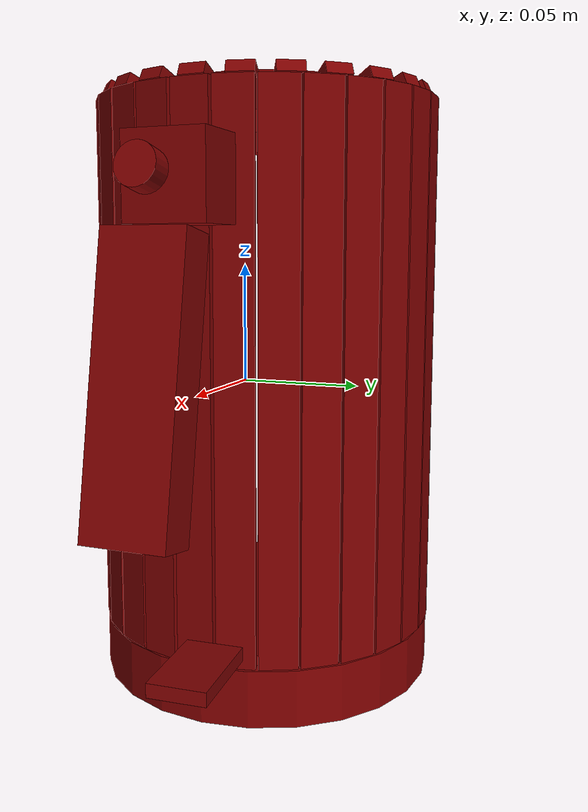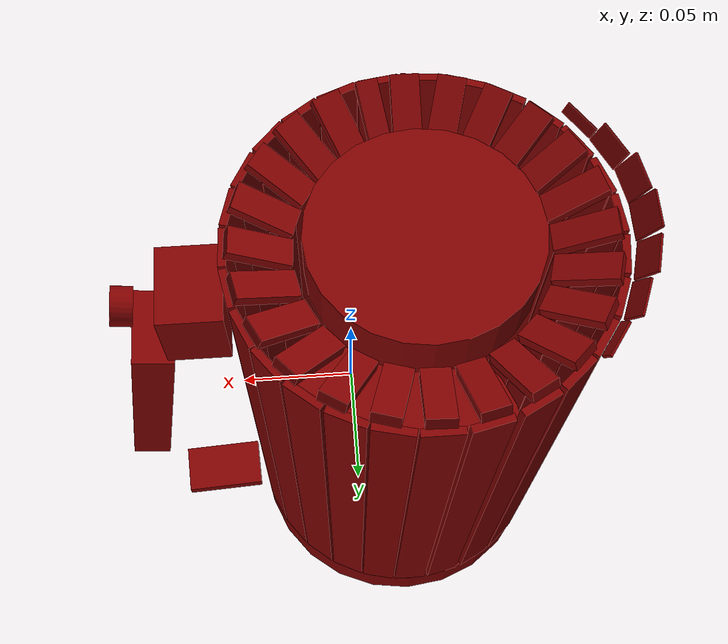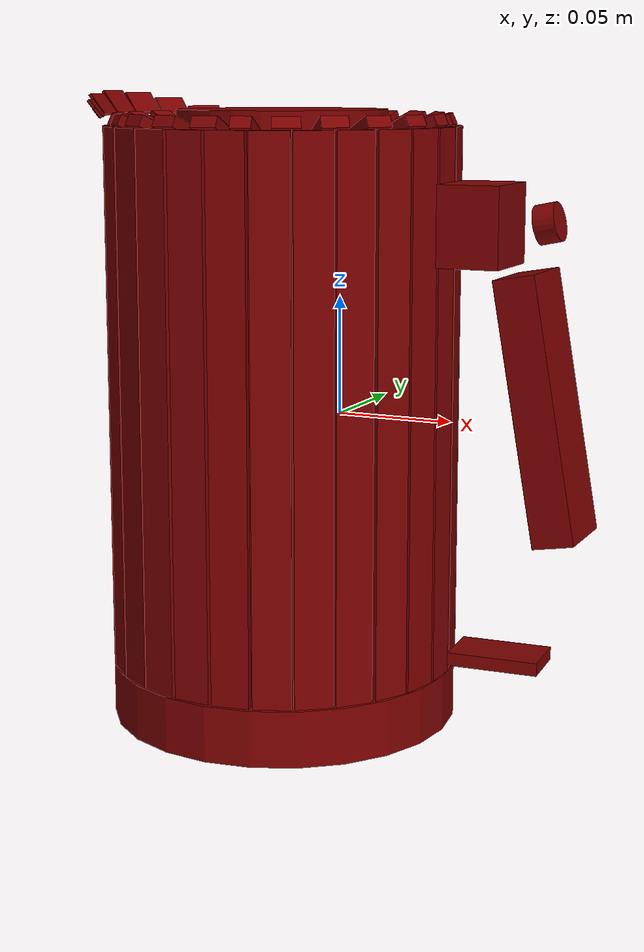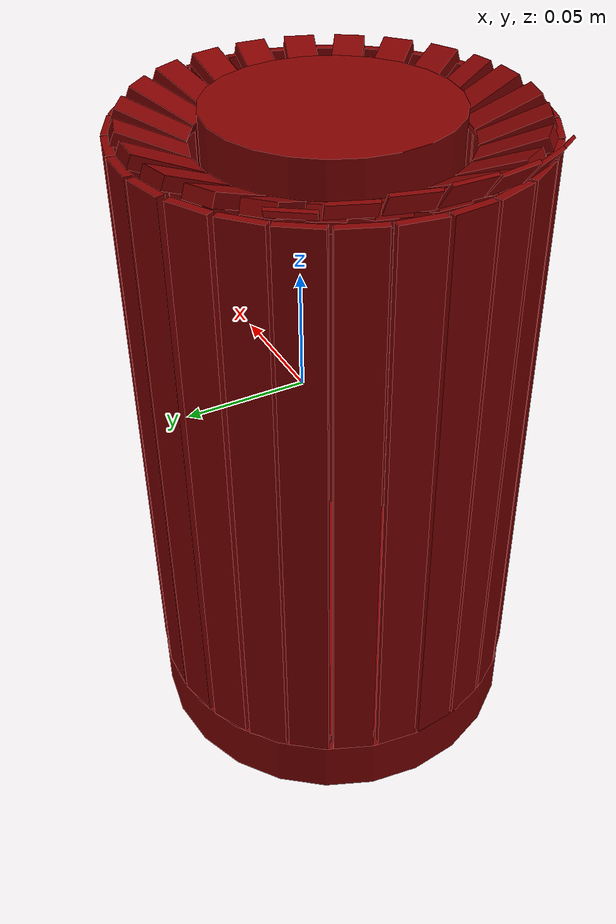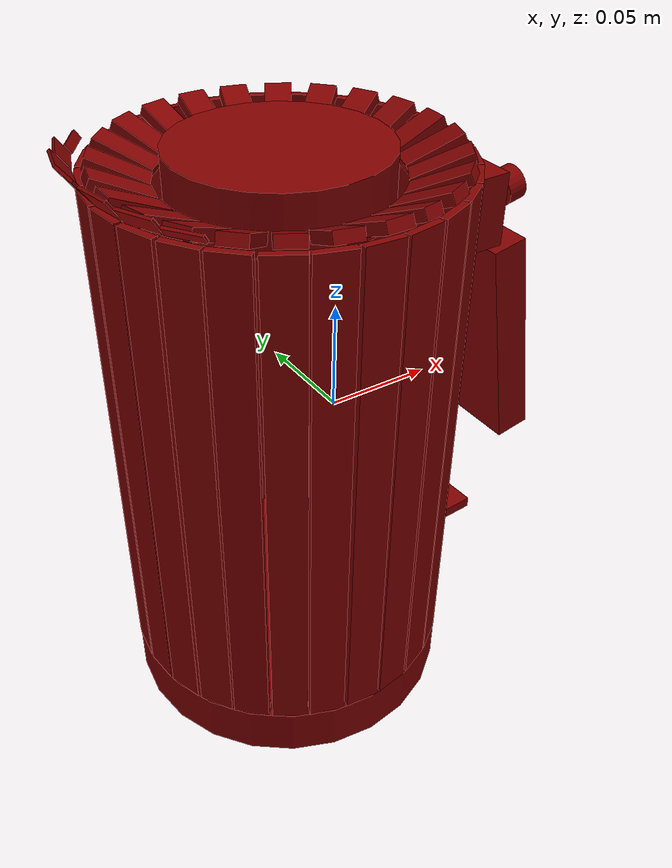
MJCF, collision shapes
<?xml version='1.0' encoding='UTF-8'?>
<mujoco model="model">
  <option timestep="0.002" gravity="0.0 0.0 -9.81"/>
  <compiler angle="radian"/>
  <asset>
    <mesh file="visuals/button_lid.obj" name="button_lid_vis"/>
    <mesh file="visuals/Body001.obj" name="Body001_vis"/>
    <mesh file="visuals/kettle_main.obj" name="kettle_main_vis"/>
    <mesh file="visuals/lid.obj" name="lid_vis"/>
    <mesh file="visuals/switch.obj" name="switch_vis"/>
    <texture file="visuals/T_BC001.png" name="Body001_material" type="2d"/>
    <material name="Body001_material" rgba="1 1 1 1.0" texture="Body001_material" shininess="0.2512328028678894" specular="0.3103448502657381"/>
    <texture file="visuals/T_BC001.png" name="kettle_main_material" type="2d"/>
    <material name="kettle_main_material" rgba="1 1 1 1.0" texture="kettle_main_material" shininess="0.2512328028678894" specular="0.3103448502657381"/>
    <texture file="visuals/T_BC001.png" name="button_lid_material" type="2d"/>
    <material name="button_lid_material" rgba="1 1 1 1.0" texture="button_lid_material" shininess="0.2512328028678894" specular="0.3103448502657381"/>
    <texture file="visuals/T_BC001.png" name="lid_material" type="2d"/>
    <material name="lid_material" rgba="1 1 1 1.0" texture="lid_material" shininess="0.2512328028678894" specular="0.3103448502657381"/>
    <texture file="visuals/T_BC001.png" name="switch_material" type="2d"/>
    <material name="switch_material" rgba="1 1 1 1.0" texture="switch_material" shininess="0.2512328028678894" specular="0.3103448502657381"/>
  </asset>
  <default>
    <default class="visual">
      <geom conaffinity="0" contype="0" group="1" type="mesh"/>
    </default>
    <default class="collision">
      <geom group="0" rgba="0.5 0 0 0.5" density="1.0" solref="0.004 1" solimp="0.998 0.998 0.001"/>
    </default>
    <default class="spawn">
      <geom group="0" rgba="1 1 1 0.5" contype="0" conaffinity="0"/>
      <site group="0" rgba="1 1 1 0.5"/>
    </default>
    <default class="region">
      <geom group="1" conaffinity="0" contype="0" rgba="0 1 0 0" mass="0"/>
    </default>
  </default>
  <worldbody>
    <body>
      <body name="object">
        <geom mesh="Body001_vis" type="mesh" solimp="0.998 0.998 0.001" solref="0.001 1" friction="0.95 0.3 0.1" class="visual" material="Body001_material"/>
        <geom type="cylinder" pos="-0.02660580 0.00000258 -0.12246000" size="0.07494957745075226 0.011956119909882545" quat="0.7071068286895752 0.0 0.0 0.7071067690849304" class="collision"/>
        <body name="kettle_main">
          <geom mesh="kettle_main_vis" type="mesh" solimp="0.998 0.998 0.001" solref="0.001 1" friction="0.95 0.3 0.1" class="visual" material="kettle_main_material"/>
          <geom type="box" pos="-0.02642252 0.07328190 0.00539838" size="0.00800186675041914 0.0015415926463901997 0.1150621846318245" quat="1.0 0.0 0.0 0.0" class="collision"/>
          <geom type="box" pos="-0.00987771 0.07134705 0.00539838" size="0.0015415920643135905 0.008001865819096565 0.1150621846318245" quat="0.782890260219574 0.0 0.0 0.6221598386764526" class="collision"/>
          <geom type="box" pos="0.00578812 0.06573302 0.00539838" size="0.0015415920643135905 0.008001865819096565 0.1150621846318245" quat="0.8484691977500916 0.0 0.0 0.5292447805404663" class="collision"/>
          <geom type="box" pos="0.02005306 0.05650765 0.00539838" size="0.0015415920643135905 0.00800186488777399 0.1150621846318245" quat="0.9040944576263428 0.0 0.0 0.42733266949653625" class="collision"/>
          <geom type="box" pos="0.03167103 0.04442916 0.00539838" size="0.0015415920643135905 0.008001865819096565 0.1150621846318245" quat="0.9470282793045044 0.0 0.0 0.32115012407302856" class="collision"/>
          <geom type="box" pos="0.04013415 0.03026384 0.00539838" size="0.001541591715067625 0.008001865819096565 0.1150621846318245" quat="0.9771638512611389 0.0 0.0 0.21248725056648254" class="collision"/>
          <geom type="box" pos="0.04529282 0.01416699 0.00539838" size="0.0015415919478982687 0.008001867681741714 0.1150621846318245" quat="0.9951496124267578 0.0 0.0 0.09837330132722855" class="collision"/>
          <geom type="box" pos="0.04662761 -0.00264278 0.00539838" size="0.0015415919478982687 0.008001870475709438 0.1150621846318245" quat="0.9998592734336853 0.0 0.0 -0.016774896532297134" class="collision"/>
          <geom type="box" pos="0.04404341 -0.01946330 0.00539838" size="0.0015415920643135905 0.008001865819096565 0.1150621846318245" quat="0.9911486506462097 0.0 0.0 -0.13275685906410217" class="collision"/>
          <geom type="box" pos="0.03777585 -0.03500218 0.00539838" size="0.0015415920643135905 0.008001865819096565 0.1150621846318245" quat="0.9694738984107971 0.0 0.0 -0.24519461393356323" class="collision"/>
          <geom type="box" pos="0.02783320 -0.04905685 0.00539838" size="0.0015415920643135905 0.008001865819096565 0.1150621846318245" quat="0.9339609742164612 0.0 0.0 -0.35737496614456177" class="collision"/>
          <geom type="box" pos="0.01543670 -0.06002200 0.00539838" size="0.0015415920643135905 0.008001865819096565 0.1150621846318245" quat="0.8876323699951172 0.0 0.0 -0.46055272221565247" class="collision"/>
          <geom type="box" pos="0.00082977 -0.06795248 0.00539838" size="0.0015415920643135905 0.008001865819096565 0.1150621846318245" quat="0.8296780586242676 0.0 0.0 -0.55824214220047" class="collision"/>
          <geom type="box" pos="-0.01548420 -0.07243342 0.00539838" size="0.0015415920643135905 0.008001861162483692 0.1150621846318245" quat="0.7596932649612427 0.0 0.0 -0.6502816081047058" class="collision"/>
          <geom type="box" pos="-0.03238244 -0.07305450 0.00539838" size="0.0015415919478982687 0.008001865819096565 0.1150621846318245" quat="0.6795952320098877 0.0 -0.0 -0.7335873246192932" class="collision"/>
          <geom type="box" pos="-0.04928919 -0.06968381 0.00539838" size="0.0015415920643135905 0.008001865819096565 0.1150621846318245" quat="0.5885902047157288 0.0 -0.0 -0.8084315657615662" class="collision"/>
          <geom type="box" pos="-0.06426362 -0.06286726 0.00539838" size="0.0015415920643135905 0.008001865819096565 0.1150621846318245" quat="0.4941175878047943 0.0 -0.0 -0.8693950772285461" class="collision"/>
          <geom type="box" pos="-0.07796244 -0.05227742 0.00539838" size="0.0015415919478982687 0.008001865819096565 0.1150621846318245" quat="0.3879491090774536 0.0 -0.0 -0.9216808080673218" class="collision"/>
          <geom type="box" pos="-0.08842244 -0.03935935 0.00539838" size="0.0015415920643135905 0.008001865819096565 0.1150621846318245" quat="0.28091803193092346 0.0 -0.0 -0.9597317576408386" class="collision"/>
          <geom type="box" pos="-0.09592506 -0.02377621 0.00539838" size="0.0015415920643135905 0.008001865819096565 0.1150621846318245" quat="0.16570313274860382 0.0 -0.0 -0.9861756563186646" class="collision"/>
          <geom type="box" pos="-0.09952724 -0.00727558 0.00539838" size="0.0015415919478982687 0.008001865819096565 0.1150621846318245" quat="0.05095844343304634 0.0 -0.0 -0.9987007975578308" class="collision"/>
          <geom type="box" pos="-0.09922090 0.00987483 0.00539838" size="0.0015415920643135905 0.008001865819096565 0.1150621846318245" quat="0.06627462059259415 0.0 0.0 0.9978014230728149" class="collision"/>
          <geom type="box" pos="-0.09477469 0.02689703 0.00539838" size="0.0015415919478982687 0.008001865819096565 0.1150621846318245" quat="0.1855694055557251 0.0 0.0 0.9826311469078064" class="collision"/>
          <geom type="box" pos="-0.08652951 0.04218498 0.00539838" size="0.0015415920643135905 0.008001865819096565 0.1150621846318245" quat="0.30071502923965454 0.0 0.0 0.9537140130996704" class="collision"/>
          <geom type="box" pos="-0.07534657 0.05472414 0.00539838" size="0.0015415920643135905 0.00800186675041914 0.1150621846318245" quat="0.4080617427825928 0.0 0.0 0.9129543304443359" class="collision"/>
          <geom type="box" pos="-0.06096792 0.06472713 0.00539838" size="0.0015415920643135905 0.008001865819096565 0.1150621846318245" quat="0.5142439007759094 0.0 0.0 0.8576440215110779" class="collision"/>
          <geom type="box" pos="-0.04359109 0.07128683 0.00539838" size="0.0015415920643135905 0.008001865819096565 0.1150621846318245" quat="0.6187848448753357 0.0 0.0 0.7855605483055115" class="collision"/>
          <geom class="collision" type="box" pos="0.06196186 -0.00012811 0.08205840" size="0.013004155829548836 0.016605259850621223 0.016605259850621223" quat="1.0 0.0 0.0 0.0" name="handle_1"/>
          <geom class="collision" type="box" pos="0.09082191 -0.00012810 0.00946376" size="0.016605259850621223 0.008727607317268848 0.05451052263379097" quat="0.7043994069099426 -0.06181764975190163 -0.06181760132312775 0.7043994665145874" name="handle_main"/>
          <geom type="box" pos="-0.10573169 -0.00012811 0.12957542" size="0.007659453898668289 0.0006117884768173099 0.005941259674727917" quat="0.6714069247245789 -0.22183959186077118 -0.22183957695960999 0.6714068651199341" class="collision"/>
          <geom type="box" pos="-0.10373501 0.01639658 0.12908588" size="0.007659454829990864 0.0006117884186096489 0.005331745371222496" quat="0.748782217502594 -0.2474053055047989 -0.19291529059410095 0.5838660001754761" class="collision"/>
          <geom type="box" pos="-0.09784589 0.03186913 0.12775214" size="0.007659453898668289 0.0006117885350249708 0.004091222304850817" quat="0.7827543616294861 -0.25863006711006165 -0.17758433520793915 0.5374661684036255" class="collision"/>
          <geom type="box" pos="-0.08848588 0.04559902 0.12561971" size="0.007659454829990864 0.0006117884186096489 0.002036670222878456" quat="0.8421623110771179 -0.2782590091228485 -0.1449054330587387 0.43856239318847656" class="collision"/>
          <geom type="box" pos="-0.10385241 -0.01625191 0.12887330" size="0.00765945203602314 0.0006117884768173099 0.005270771682262421" quat="0.6088082790374756 -0.20115646719932556 -0.2407524734735489 0.7286472320556641" class="collision"/>
          <geom type="box" pos="-0.09800412 -0.03138947 0.12744614" size="0.007659453433007002 0.0006117885350249708 0.00424188282340765" quat="0.5062944889068604 -0.16728495061397552 -0.2654081881046295 0.8032684326171875" class="collision"/>
          <geom type="box" pos="-0.08913381 -0.04480257 0.12581834" size="0.007659455761313438 0.0006117885932326317 0.0021802636329084635" quat="0.4446240961551666 -0.14690832793712616 -0.27720677852630615 0.8389778137207031" class="collision"/>
          <geom type="cylinder" pos="-0.02670914 0.00000000 -0.10732205" size="0.07178782671689987 0.0020471226889640093" quat="1.0 0.0 0.0 0.0" class="collision"/>
          <body name="button_lid">
            <joint axis="-0.9854084849357605 0.0 -0.1702066957950592" pos="0.09208386 -0.00018841 0.08367191" limited="true" name="button_lid_joint" range="0.0 0.005" type="slide" damping="1" frictionloss="1" armature=".01" stiffness="0.05" springref="-1"/>
            <geom mesh="button_lid_vis" type="mesh" solimp="0.998 0.998 0.001" solref="0.001 1" friction="0.95 0.3 0.1" class="visual" material="button_lid_material"/>
            <geom class="collision" type="cylinder" pos="0.09040323 0.00000000 0.08346344" size="0.008015344850718975 0.004460545722395182" quat="0.5490119457244873 0.44562968611717224 0.4456297755241394 0.5490120053291321" name="button_lid_main"/>
          </body>
          <body name="lid">
            <joint axis="0.0 1.0 0.0" pos="0.04689338 -0.00031362 0.12346040" limited="true" name="lid_joint" range="0.0 1.5707963267948966" type="hinge" damping="1" frictionloss="0.1" armature=".01" stiffness="0.05" springref="-6"/>
            <geom mesh="lid_vis" type="mesh" solimp="0.998 0.998 0.001" solref="0.001 1" friction="0.95 0.3 0.1" class="visual" material="lid_material"/>
            <geom class="collision" type="cylinder" pos="-0.02660580 0.00000258 0.11506008" size="0.04437635466456413 0.012147023342549801" quat="0.7071068286895752 0.0 0.0 0.7071067690849304" name="lid_main"/>
            <geom class="collision" type="box" pos="-0.02528940 -0.06017656 0.11838058" size="0.012615490265190601 0.005620128940790892 0.002410272369161248" quat="0.6915047764778137 -0.14771999418735504 0.14771993458271027 0.691504716873169" name="lid_1"/>
            <geom class="collision" type="box" pos="-0.04092300 -0.05846357 0.11838058" size="0.012615490265190601 0.005620128475129604 0.002410272369161248" quat="0.7759189605712891 -0.12715519964694977 0.1657526195049286 0.5952372550964355" name="lid_2"/>
            <geom class="collision" type="box" pos="-0.05556576 -0.05276655 0.11838058" size="0.012615490265190601 0.005620129406452179 0.0024102728348225355" quat="0.8469710350036621 -0.10443379729986191 0.18093091249465942 0.4888738989830017" name="lid_3"/>
            <geom class="collision" type="box" pos="-0.06804346 -0.04365687 0.11838058" size="0.012615490265190601 0.005620128940790892 0.002410272369161248" quat="0.9027070999145508 -0.0803503692150116 0.19283722341060638 0.3761349618434906" name="lid_4"/>
            <geom class="collision" type="box" pos="-0.07804334 -0.03126007 0.11838058" size="0.012615490265190601 0.005620129406452179 0.002410272369161248" quat="0.9445363283157349 -0.05413040891289711 0.20177285373210907 0.25339439511299133" name="lid_5"/>
            <geom class="collision" type="box" pos="-0.08436593 -0.01667383 0.11838058" size="0.012615490265190601 0.005620129406452179 0.002410272369161248" quat="0.9698748588562012 -0.026767006143927574 0.20718567073345184 0.12530121207237244" name="lid_6"/>
            <geom class="collision" type="box" pos="-0.08667960 -0.00127176 0.11838058" size="0.012615490265190601 0.005620128940790892 0.002410271903499961" quat="0.9779346585273743 0.00026341041666455567 0.2089073210954666 -0.0012332235928624868" name="lid_7"/>
            <geom class="collision" type="box" pos="-0.08493134 0.01434066 0.11838058" size="0.012615490265190601 0.005620128940790892 0.002410272369161248" quat="0.9694104790687561 0.02752389945089817 0.2070864886045456 -0.12884455919265747" name="lid_8"/>
            <geom class="collision" type="box" pos="-0.07911689 0.02912370 0.11838058" size="0.012615490265190601 0.005620128475129604 0.002410272369161248" quat="0.9439310431480408 0.054610129445791245 0.20164352655410767 -0.25564005970954895" name="lid_9"/>
            <geom class="collision" type="box" pos="-0.06950357 0.04200804 0.11838058" size="0.012615490265190601 0.005620128940790892 0.002410272369161248" quat="0.9013394117355347 0.08104799687862396 0.1925450563430786 -0.37940075993537903" name="lid_10"/>
            <geom class="collision" type="box" pos="-0.05672183 0.05194715 0.11838058" size="0.012615490265190601 0.005620128940790892 0.0024102728348225355" quat="0.8421201705932617 0.10620882362127304 0.17989465594291687 -0.49718329310417175" name="lid_11"/>
            <geom class="collision" type="box" pos="-0.04184022 0.05809676 0.11838058" size="0.012615490265190601 0.005620129406452179 0.0024102728348225355" quat="0.7680498361587524 0.12931713461875916 0.16407182812690735 -0.6053568720817566" name="lid_12"/>
            <geom class="collision" type="box" pos="-0.02609456 0.06008302 0.11838058" size="0.012615490265190601 0.005620128940790892 0.002410272601991892" quat="0.6815394759178162 0.1498185098171234 0.14559118449687958 -0.701328456401825" name="lid_13"/>
            <geom class="collision" type="box" pos="-0.01046399 0.05790892 0.11838058" size="0.012615490265190601 0.005620129406452179 0.002410272369161248" quat="0.5837196707725525 0.16761139035224915 0.12469482421875 -0.7846202850341797" name="lid_14"/>
            <geom class="collision" type="box" pos="0.00442431 0.05153292 0.11838058" size="0.012615490265190601 0.005620128475129604 0.002410272369161248" quat="0.47284984588623047 0.18286390602588654 0.10101070255041122 -0.8560202121734619" name="lid_15"/>
            <geom class="collision" type="box" pos="0.01726547 0.04121572 0.11838058" size="0.012615490265190601 0.005620129406452179 0.002410272601991892" quat="0.3512689173221588 0.19496570527553558 0.07503847032785416 -0.9126706719398499" name="lid_16"/>
            <geom class="collision" type="box" pos="0.02647051 0.02847790 0.11838058" size="0.012615490265190601 0.005620128475129604 0.002410272369161248" quat="0.2291143536567688 0.20309333503246307 0.04894360527396202 -0.9507177472114563" name="lid_17"/>
            <geom class="collision" type="box" pos="0.03209461 0.01366358 0.11838058" size="0.012615490265190601 0.005620128940790892 0.002410272369161248" quat="0.10197705775499344 0.20776855945587158 0.021784435957670212 -0.9726039171218872" name="lid_18"/>
            <geom class="collision" type="box" pos="0.03365495 -0.00218645 0.11838058" size="0.012615490265190601 0.005620129406452179 0.002410272369161248" quat="0.027596138417720795 -0.2088245004415512 0.005895140580832958 0.9775459170341492" name="lid_19"/>
            <geom class="collision" type="box" pos="0.03097326 -0.01798855 0.11838058" size="0.012615490265190601 0.005620128940790892 0.002410272369161248" quat="0.15750408172607422 -0.2061803936958313 0.033646199852228165 0.9651684165000916" name="lid_20"/>
            <geom class="collision" type="box" pos="0.02415748 -0.03261441 0.11838058" size="0.012615490265190601 0.005620129406452179 0.002410272369161248" quat="0.28545430302619934 -0.1998097449541092 0.06097904220223427 0.9353467226028442" name="lid_21"/>
            <geom class="collision" type="box" pos="0.01397339 -0.04465815 0.11838058" size="0.012615490265190601 0.005620128940790892 0.002410272601991892" quat="0.40554216504096985 -0.19009801745414734 0.0866323783993721 0.8898837566375732" name="lid_22"/>
            <geom class="collision" type="box" pos="0.00101785 -0.05363885 0.11838058" size="0.012615490265190601 0.005620128940790892 0.002410272369161248" quat="0.5185794234275818 -0.17711657285690308 0.11077947914600372 0.8291158080101013" name="lid_23"/>
            <geom class="collision" type="box" pos="-0.01245989 -0.05868481 0.11838058" size="0.012615490265190601 0.004229099955409765 0.002410272601991892" quat="0.6226900219917297 -0.1610843986272812 0.13301981985569 0.7540654540061951" name="lid_24"/>
          </body>
          <body name="switch">
            <joint axis="0.0 1.0 0.0" pos="0.04469668 0.00758997 -0.10104797" limited="true" name="switch_joint" range="0.0 0.2617993877991494" type="hinge" damping="1" frictionloss="1" armature=".01" stiffness="0.25" springref="-1"/>
            <geom mesh="switch_vis" type="mesh" solimp="0.998 0.998 0.001" solref="0.001 1" friction="0.95 0.3 0.1" class="visual" material="switch_material"/>
            <geom class="collision" type="box" pos="0.07037529 0.00852317 -0.10104804" size="0.019302455708384514 0.011767103336751461 0.0027952531818300486" quat="0.9996287226676941 0.0 0.0 0.027246350422501564" name="switch_main"/>
          </body>
        </body>
        <geom class="region" name="reg_main" type="box" pos="0.002323499999999999 0.0 0.0" size="0.11327767999999999 0.07577053 0.13565914"/>
      </body>
    </body>
  </worldbody>
  <actuator>
    <motor name="button_lid_joint_actuator" joint="button_lid_joint" gear="0.5"/>
    <motor name="lid_joint_actuator" joint="lid_joint" gear="0.5"/>
    <motor name="switch_joint_actuator" joint="switch_joint" gear="0.5"/>
  </actuator>
</mujoco>
